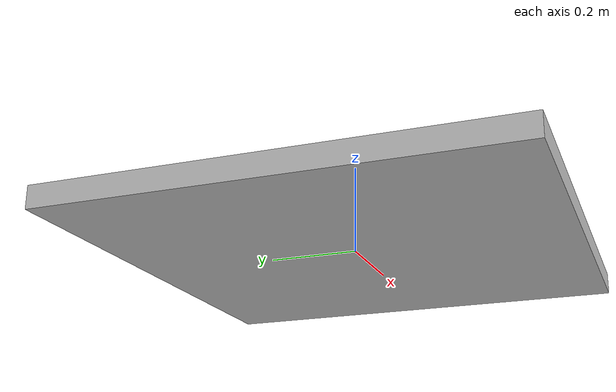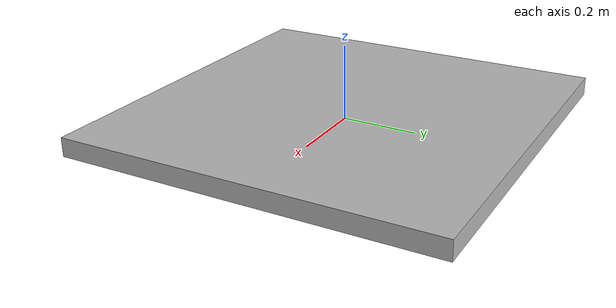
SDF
<?xml version="1.0"?>
<sdf version="1.5">
    <model name="landing_station">
      <pose>0 0 0  0 0 0</pose>
      <static>true</static>
      <link name="body">
        <visual name="visual">
          <geometry>
            <mesh><uri>model://landing_station/meshes/marker.obj</uri></mesh>
          </geometry>
        </visual>
      </link>
    </model>
</sdf>
